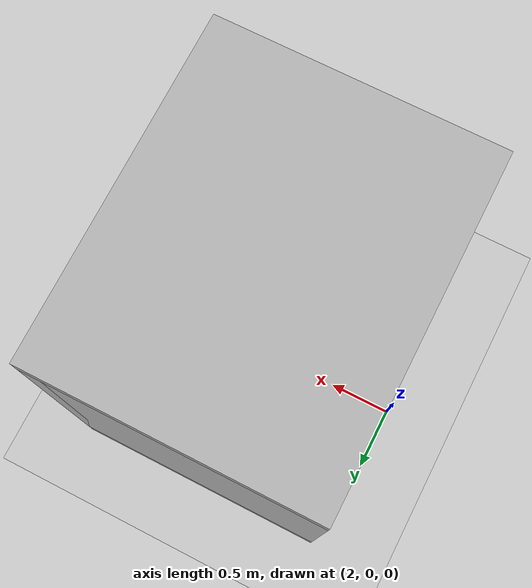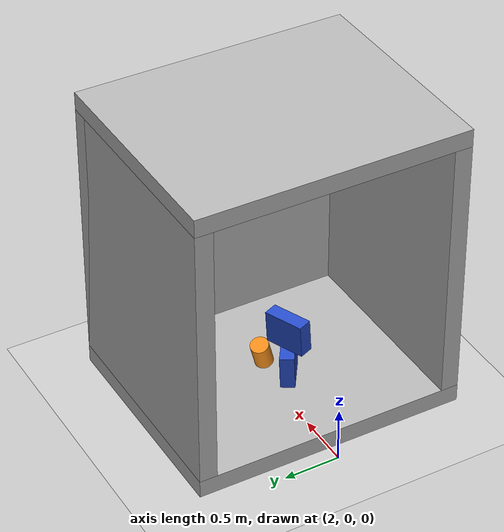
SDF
<sdf version="1.6">
 <world name="default">
  <light name="sun" type="directional">
   <pose>0 0 10 0 -0 0</pose>
   <diffuse>0.8 0.8 0.8 1</diffuse>
   <specular>0.1 0.1 0.1 1</specular>
   <attenuation>
    <range>1000</range>
    <constant>0.9</constant>
    <linear>0.01</linear>
    <quadratic>0.001</quadratic>
   </attenuation>
   <direction>-0.5 0.5 -1</direction>
  </light>
  <model name="ground_plane">
   <static>1</static>
   <link name="link">
    <collision name="collision">
     <geometry><plane><normal>0 0 1</normal><size>100 100</size></plane></geometry>
     <surface><friction><ode><mu>100</mu><mu2>50</mu2></ode></friction></surface>
    </collision>
    <visual name="visual">
     <cast_shadows>0</cast_shadows>
     <geometry><plane><normal>0 0 1</normal><size>100 100</size></plane></geometry>
     <material>
      <script><uri>file://media/materials/scripts/gazebo.material</uri><name>Gazebo/Grey</name></script>
     </material>
    </visual>
   </link>
  </model>
  <physics name="default_physics" default="0" type="ode">
   <real_time_update_rate>0</real_time_update_rate>
   <max_step_size>0.001</max_step_size>
   <real_time_factor>1</real_time_factor>
  </physics>
  <gravity>0 0 -9.8</gravity>
  <magnetic_field>6e-06 2.3e-05 -4.2e-05</magnetic_field>
  <atmosphere type="adiabatic"/>
  <scene><ambient>0.4 0.4 0.4 1</ambient><background>0.7 0.7 0.7 1</background><shadows>1</shadows></scene>
  <spherical_coordinates>
   <surface_model>EARTH_WGS84</surface_model>
   <latitude_deg>0</latitude_deg>
   <longitude_deg>0</longitude_deg>
   <elevation>0</elevation>
   <heading_deg>0</heading_deg>
  </spherical_coordinates>
  <model name="container">
   <link name="container">
    <inertial>
     <pose>0.22439 0 1.64098 0 -0 0</pose>
     <mass>205</mass>
     <inertia>
      <ixx>329.883</ixx>
      <ixy>1.59439e-15</ixy>
      <ixz>12.9249</ixz>
      <iyy>229.817</iyy>
      <iyz>1.16598e-14</iyz>
      <izz>267.609</izz>
     </inertia>
    </inertial>
    <collision name="container_back_collision">
     <pose>0.92 0 1.36 0 -0 0</pose>
     <geometry><box><size>0.16 2.45 2.4</size></box></geometry>
    </collision>
    <collision name="container_bottom_collision_1">
     <pose>0 0 0.08 0 -0 0</pose>
     <geometry><box><size>2 2.45 0.16</size></box></geometry>
    </collision>
    <collision name="container_left_collision_2">
     <pose>0 1.145 1.36 0 -0 0</pose>
     <geometry><box><size>2 0.16 2.4</size></box></geometry>
    </collision>
    <collision name="container_right_collision_3">
     <pose>0 -1.145 1.36 0 -0 0</pose>
     <geometry><box><size>2 0.16 2.4</size></box></geometry>
    </collision>
    <collision name="container_top_collision_4">
     <pose>0 0 2.64 0 -0 0</pose>
     <geometry><box><size>2 2.45 0.16</size></box></geometry>
    </collision>
    <visual name="container_back_visual">
     <pose>0.92 0 1.36 0 -0 0</pose>
     <geometry><box><size>0.16 2.45 2.4</size></box></geometry>
    </visual>
    <visual name="container_bottom_visual_1">
     <pose>0 0 0.08 0 -0 0</pose>
     <geometry><box><size>2 2.45 0.16</size></box></geometry>
    </visual>
    <visual name="container_left_visual_2">
     <pose>0 1.145 1.36 0 -0 0</pose>
     <geometry><box><size>2 0.16 2.4</size></box></geometry>
    </visual>
    <visual name="container_right_visual_3">
     <pose>0 -1.145 1.36 0 -0 0</pose>
     <geometry><box><size>2 0.16 2.4</size></box></geometry>
    </visual>
    <visual name="container_top_visual_4">
     <pose>0 0 2.64 0 -0 0</pose>
     <geometry><box><size>2 2.45 0.16</size></box></geometry>
    </visual>
   </link>
   <pose>3.09055 0.009644 0.048999 0.005083 0.005414 -0.000839</pose>
  </model>
  <model name="roblog-dhl-box-blue-simple-0-2216">
   <link name="link">
    <inertial>
     <mass>0.25</mass>
     <inertia>
      <ixx>0.00218083</ixx>
      <ixy>0</ixy>
      <ixz>0</ixz>
      <iyy>0.00473308</iyy>
      <iyz>0</iyz>
      <izz>0.00321375</izz>
     </inertia>
    </inertial>
    <collision name="link_collision"><geometry><box><size>0.372 0.126 0.298</size></box></geometry></collision>
    <visual name="link_visual">
     <geometry><box><size>0.372 0.126 0.298</size></box></geometry>
     <material>
      <script><name>Gazebo/Blue</name><uri>file://media/materials/scripts/gazebo.material</uri></script>
     </material>
    </visual>
   </link>
   <pose>2.91802 -0.060611 0.3598 -0.034344 0.011395 -0.589348</pose>
  </model>
  <model name="roblog-dhl-box-blue-simple-1-2217">
   <link name="link">
    <inertial>
     <mass>0.25</mass>
     <inertia>
      <ixx>0.00218083</ixx>
      <ixy>0</ixy>
      <ixz>0</ixz>
      <iyy>0.00473308</iyy>
      <iyz>0</iyz>
      <izz>0.00321375</izz>
     </inertia>
    </inertial>
    <collision name="link_collision"><geometry><box><size>0.372 0.126 0.298</size></box></geometry></collision>
    <visual name="link_visual">
     <geometry><box><size>0.372 0.126 0.298</size></box></geometry>
     <material>
      <script><name>Gazebo/Blue</name><uri>file://media/materials/scripts/gazebo.material</uri></script>
     </material>
    </visual>
   </link>
   <pose>2.93438 -0.065252 0.659261 -0.039341 0.032396 0.364372</pose>
  </model>
  <model name="roblog-vanish-detergent-simple-2-2218">
   <link name="link">
    <inertial>
     <mass>0.08</mass>
     <inertia>
      <ixx>0.000324987</ixx>
      <ixy>0</ixy>
      <ixz>0</ixz>
      <iyy>0.000324987</iyy>
      <iyz>0</iyz>
      <izz>0.00011664</izz>
     </inertia>
    </inertial>
    <collision name="link_collision">
     <geometry><cylinder><length>0.2</length><radius>0.054</radius></cylinder></geometry>
    </collision>
    <visual name="link_visual">
     <geometry><cylinder><length>0.2</length><radius>0.054</radius></cylinder></geometry>
     <material>
      <script><name>Gazebo/PurpleGlow</name><uri>file://media/materials/scripts/gazebo.material</uri></script>
     </material>
    </visual>
    <velocity_decay><linear>0.005</linear><angular>0.005</angular></velocity_decay>
   </link>
   <pose>3.17177 0.217336 0.05242 -1.2785 -0.269498 0.487442</pose>
  </model>
  <model name="roblog-maisels-barrel-simple-3-2219">
   <link name="link">
    <inertial>
     <mass>0.54</mass>
     <inertia>
      <ixx>0.00354312</ixx>
      <ixy>0</ixy>
      <ixz>0</ixz>
      <iyy>0.00354312</iyy>
      <iyz>0</iyz>
      <izz>0.00181548</izz>
     </inertia>
    </inertial>
    <collision name="link_collision">
     <geometry><cylinder><length>0.242</length><radius>0.082</radius></cylinder></geometry>
    </collision>
    <visual name="link_visual">
     <geometry><cylinder><length>0.242</length><radius>0.082</radius></cylinder></geometry>
     <material>
      <script><name>Gazebo/Orange</name><uri>file://media/materials/scripts/gazebo.material</uri></script>
     </material>
    </visual>
    <velocity_decay><linear>0.005</linear><angular>0.005</angular></velocity_decay>
   </link>
   <pose>3.12179 0.08311 0.349869 -0.176688 -0.309023 -0.487682</pose>
  </model>
 </world>
</sdf>
